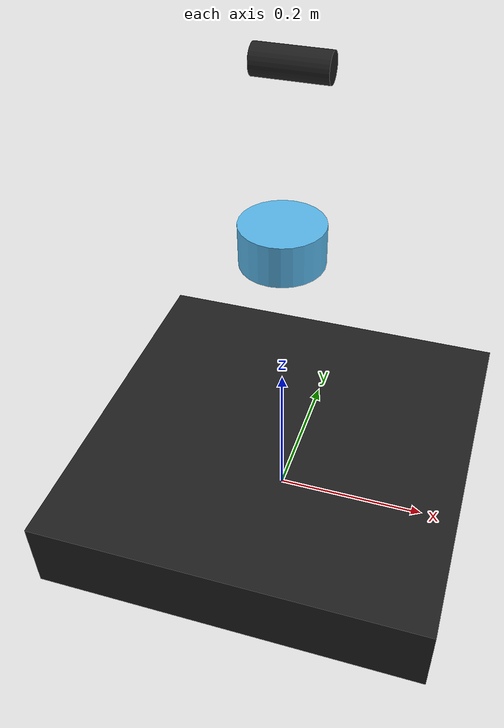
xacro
<?xml version="1.0"?>
<robot name="robot" xmlns:xacro="http://ros.org/wiki/xacro">

    <!-- Simulation Plugins -->
    <gazebo>
        <gravity>0</gravity>
        <self_collide>0</self_collide>

        <plugin name="gazebo_planar_move_plugin" filename="libgazebo_planar_move_plugin.so">
            <robot_namespace>/</robot_namespace>
            <robot_frame>base_link</robot_frame>
            <odometry_frame>odom</odometry_frame>
            <odometry_topic>odom</odometry_topic>
            <command_topic>cmd_vel</command_topic>
            <control_mode>position</control_mode>
            <publish_odometry>true</publish_odometry>
            <publish_tf>true</publish_tf>
        </plugin>
    </gazebo>

    <link name="base_link">
        <visual>
            <origin xyz="0 0 0.05" />
            <geometry>
                <box size="0.5 0.5 0.1" />
            </geometry>
        </visual>
        <collision>
            <origin xyz="0 0 0.05" />
            <geometry>
                <box size="0.5 0.5 0.1" />
            </geometry>
        </collision>
        <inertial>
            <origin xyz="0 0 0" rpy="0 0 0" />
            <mass value="1" />
            <inertia
                ixx="1" ixy="0" ixz="0"
                iyy="1" iyz="0"
                izz="1" />
        </inertial>
    </link>
    <gazebo reference="base_link">
        <mu1>0.0</mu1>
        <mu2>0.0</mu2>
        <maxVel>0.0</maxVel>
        <minDepth>0.001</minDepth>
        <kp>1000000.0</kp>
        <kd>1.0</kd>
        <material>Gazebo/Black</material>
    </gazebo>

    <xacro:macro name="laser_sensor" params="suffix rotation">
        <joint name="laser_joint_${suffix}" type="fixed">
            <origin xyz="0 0 0.4" rpy="0 0 ${rotation}" />
            <child link="laser_${suffix}" />
            <parent link="base_link" />
        </joint>
        <link name="laser_${suffix}">
            <visual>
                <origin xyz="0 0 0" />
                <geometry>
                    <cylinder length="0.05" radius="0.05" />
                </geometry>
            </visual>
            <collision>
                <origin xyz="0 0 0" />
                <geometry>
                    <cylinder length="0.05" radius="0.05" />
                </geometry>
            </collision>
            <inertial>
                <mass value="1" />
                <origin xyz="0 0 0" />
                <inertia
                    ixx="1" ixy="0" ixz="0"
                    iyy="1" iyz="0"
                    izz="1" />
            </inertial>
        </link>
        <gazebo reference="laser_${suffix}">
            <sensor type="ray" name="laser_${suffix}">
                <pose>0 0 0 0 0 0</pose>
                <visualize>false</visualize>
                <update_rate>40</update_rate>
                <ray>
                    <scan>
                        <horizontal>
                            <samples>540</samples>
                            <resolution>1</resolution>
                            <min_angle>-2.35619</min_angle>
                            <max_angle>2.35619</max_angle>
                        </horizontal>
                    </scan>
                    <range>
                        <min>0.1</min>
                        <max>30.0</max>
                        <resolution>0.01</resolution>
                    </range>
                    <noise>
                        <type>gaussian</type>
                        <mean>0.0</mean>
                        <stddev>0.001</stddev>
                    </noise>
                </ray>
                <plugin name="gazebo_laser_plugin" filename="libgazebo_laser_plugin.so">
                    <frame_name>laser_${suffix}</frame_name>
                    <robot_namespace>/</robot_namespace>
                </plugin>
            </sensor>
        </gazebo>
    </xacro:macro>

    <xacro:laser_sensor suffix="front" rotation="0.0" />
    <xacro:laser_sensor suffix="back" rotation="${pi}" />

    <xacro:macro name="sonar_sensor" params="suffix rotation">
        <joint name="sonar_${suffix}_joint" type="fixed">
            <origin xyz="0 0 0.4" rpy="0 0 ${rotation}" />
            <child link="sonar_${suffix}" />
            <parent link="base_link" />
        </joint>
        <link name="sonar_${suffix}">
            <visual>
                <origin xyz="0 0 0" />
                <geometry>
                    <cylinder length="0.05" radius="0.05" />
                </geometry>
            </visual>
            <collision>
                <origin xyz="0 0 0" />
                <geometry>
                    <cylinder length="0.05" radius="0.05" />
                </geometry>
            </collision>
            <inertial>
                <mass value="1" />
                <origin xyz="0 0 0" />
                <inertia
                    ixx="1" ixy="0" ixz="0"
                    iyy="1" iyz="0"
                    izz="1" />
            </inertial>
        </link>
        <gazebo reference="sonar_${suffix}">
            <sensor type="ray" name="sonar_${suffix}">
                <pose>0 0 0 0 0 0</pose>
                <visualize>true</visualize>
                <update_rate>10</update_rate>
                <ray>
                    <scan>
                        <horizontal>
                            <samples>10</samples>
                            <resolution>1</resolution>
                            <min_angle>-0.4</min_angle>
                            <max_angle>0.4</max_angle>
                        </horizontal>
                        <vertical>
                            <samples>10</samples>
                            <resolution>1</resolution>
                            <min_angle>-0.2</min_angle>
                            <max_angle>0.2</max_angle>
                        </vertical>
                    </scan>
                    <range>
                        <min>0.15</min>
                        <max>1.5</max>
                        <resolution>0.01</resolution>
                    </range>
                </ray>
                <plugin name="gazebo_range_plugin" filename="libgazebo_range_plugin.so">
                    <robot_namespace>/</robot_namespace>
                    <field_of_view>0.8</field_of_view>
                </plugin>
            </sensor>
        </gazebo>
    </xacro:macro>

    <joint name="camera_joint" type="fixed">
        <origin xyz="0.0 0.0 0.6" rpy="0.0 ${pi/2} 0.0" />
        <parent link="base_link" />
        <child link="camera" />
    </joint>
    <gazebo reference="camera_joint">
        <disableFixedJointLumping>true</disableFixedJointLumping>
    </gazebo>
    <link name="camera">
        <inertial>
            <mass value="1" />
            <inertia ixx="1e-6" ixy="0" ixz="0" iyy="1e-6" iyz="0" izz="1e-6" />
        </inertial>
        <visual>
            <origin xyz="0 0 0.01" rpy="0 0 0" />
            <geometry>
                <cylinder radius="0.016" length="0.080" />
            </geometry>
            <material name="black" />
        </visual>
        <collision>
            <origin xyz="0 0 0.01" rpy="0 0 0" />
            <geometry>
                <cylinder radius="0.016" length="0.080" />
            </geometry>
        </collision>
    </link>
    <gazebo reference="camera">
        <material>Gazebo/Grey</material>
        <sensor type="camera" name="camera">
            <update_rate>1</update_rate>
            <camera name="camera">
                <pose>0 0 0 0 ${-pi/2} ${pi/2}</pose>
                <horizontal_fov>1.5</horizontal_fov>
                <image>
                    <width>2560</width>
                    <height>1920</height>
                    <format>R8G8B8</format>
                </image>
                <clip>
                    <near>0.01</near>
                    <far>100</far>
                </clip>
                <noise>
                    <type>gaussian</type>
                    <mean>0.0</mean>
                    <stddev>0.00</stddev>
                </noise>
            </camera>
            <plugin name="camera_controller" filename="libgazebo_modular_camera_plugin.so">
                <camera_name>camera</camera_name>
                <updateRate>0</updateRate>
                <frame_name>camera</frame_name>
            </plugin>
        </sensor>
    </gazebo>

</robot>
